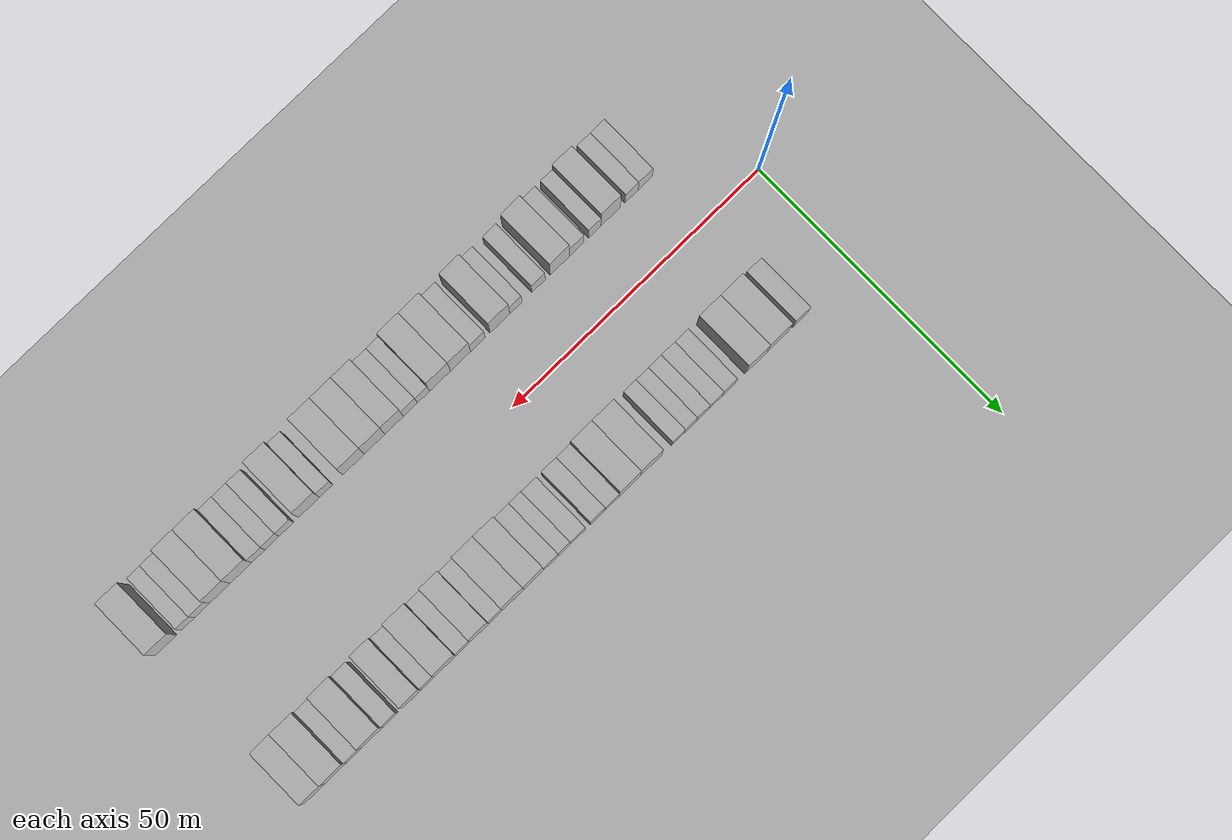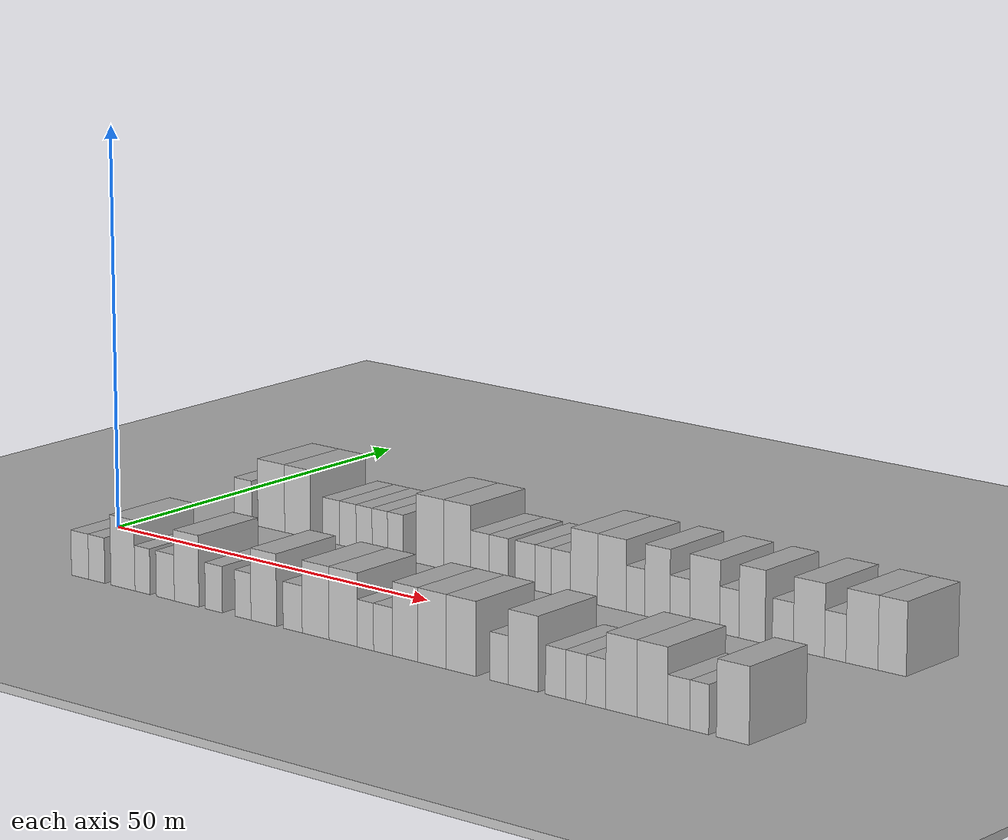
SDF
<sdf version="1.6">
 <world name="default">
  <include><name>ground_plane_1</name><uri>model://HANNAS_ground_plane</uri></include>
  <include>
   <name>ground_plane_2</name>
   <uri>model://HANNAS_ground_plane</uri>
   <pose>100 0 0  0 0 0</pose>
  </include>
  <model name="building_1">
   <static>1</static>
   <pose>11.4720 15.0000 0 0.000000 0.000000 1.570796</pose>
   <link name="link">
    <pose>0 0 3.00 0 0 0</pose>
    <collision name="collision"><geometry><box><size>10.0000 2.9440 6.0000</size></box></geometry></collision>
    <visual name="visual">
     <cast_shadows>0</cast_shadows>
     <geometry><box><size>10.0000 2.9440 6.0000</size></box></geometry>
     <material>
      <script>
       <uri>model://HANNAS_wall/materials/scripts</uri>
       <uri>model://HANNAS_wall/materials/textures</uri>
       <name>vrc/HANNAS_wall</name>
      </script>
     </material>
    </visual>
   </link>
  </model>
  <model name="building_2">
   <static>1</static>
   <pose>16.1658 15.0000 0 0.000000 0.000000 1.570796</pose>
   <link name="link">
    <pose>0 0 4.50 0 0 0</pose>
    <collision name="collision"><geometry><box><size>10.0000 4.4437 9.0000</size></box></geometry></collision>
    <visual name="visual">
     <cast_shadows>0</cast_shadows>
     <geometry><box><size>10.0000 4.4437 9.0000</size></box></geometry>
     <material>
      <script>
       <uri>model://HANNAS_wall/materials/scripts</uri>
       <uri>model://HANNAS_wall/materials/textures</uri>
       <name>vrc/HANNAS_wall</name>
      </script>
     </material>
    </visual>
   </link>
  </model>
  <model name="building_3">
   <static>1</static>
   <pose>20.5180 15.0000 0 0.000000 0.000000 1.570796</pose>
   <link name="link">
    <pose>0 0 4.50 0 0 0</pose>
    <collision name="collision"><geometry><box><size>10.0000 4.2608 9.0000</size></box></geometry></collision>
    <visual name="visual">
     <cast_shadows>0</cast_shadows>
     <geometry><box><size>10.0000 4.2608 9.0000</size></box></geometry>
     <material>
      <script>
       <uri>model://HANNAS_wall/materials/scripts</uri>
       <uri>model://HANNAS_wall/materials/textures</uri>
       <name>vrc/HANNAS_wall</name>
      </script>
     </material>
    </visual>
   </link>
  </model>
  <model name="building_4">
   <static>1</static>
   <pose>25.9887 15.0000 0 0.000000 0.000000 1.570796</pose>
   <link name="link">
    <pose>0 0 3.00 0 0 0</pose>
    <collision name="collision"><geometry><box><size>10.0000 2.6806 6.0000</size></box></geometry></collision>
    <visual name="visual">
     <cast_shadows>0</cast_shadows>
     <geometry><box><size>10.0000 2.6806 6.0000</size></box></geometry>
     <material>
      <script>
       <uri>model://HANNAS_wall/materials/scripts</uri>
       <uri>model://HANNAS_wall/materials/textures</uri>
       <name>vrc/HANNAS_wall</name>
      </script>
     </material>
    </visual>
   </link>
  </model>
  <model name="building_5">
   <static>1</static>
   <pose>28.6825 15.0000 0 0.000000 0.000000 1.570796</pose>
   <link name="link">
    <pose>0 0 3.00 0 0 0</pose>
    <collision name="collision"><geometry><box><size>10.0000 2.7070 6.0000</size></box></geometry></collision>
    <visual name="visual">
     <cast_shadows>0</cast_shadows>
     <geometry><box><size>10.0000 2.7070 6.0000</size></box></geometry>
     <material>
      <script>
       <uri>model://HANNAS_wall/materials/scripts</uri>
       <uri>model://HANNAS_wall/materials/textures</uri>
       <name>vrc/HANNAS_wall</name>
      </script>
     </material>
    </visual>
   </link>
  </model>
  <model name="building_6">
   <static>1</static>
   <pose>31.3200 15.0000 0 0.000000 0.000000 1.570796</pose>
   <link name="link">
    <pose>0 0 3.00 0 0 0</pose>
    <collision name="collision"><geometry><box><size>10.0000 2.5679 6.0000</size></box></geometry></collision>
    <visual name="visual">
     <cast_shadows>0</cast_shadows>
     <geometry><box><size>10.0000 2.5679 6.0000</size></box></geometry>
     <material>
      <script>
       <uri>model://HANNAS_wall/materials/scripts</uri>
       <uri>model://HANNAS_wall/materials/textures</uri>
       <name>vrc/HANNAS_wall</name>
      </script>
     </material>
    </visual>
   </link>
  </model>
  <model name="building_7">
   <static>1</static>
   <pose>33.8323 15.0000 0 0.000000 0.000000 1.570796</pose>
   <link name="link">
    <pose>0 0 3.00 0 0 0</pose>
    <collision name="collision"><geometry><box><size>10.0000 2.4568 6.0000</size></box></geometry></collision>
    <visual name="visual">
     <cast_shadows>0</cast_shadows>
     <geometry><box><size>10.0000 2.4568 6.0000</size></box></geometry>
     <material>
      <script>
       <uri>model://HANNAS_wall/materials/scripts</uri>
       <uri>model://HANNAS_wall/materials/textures</uri>
       <name>vrc/HANNAS_wall</name>
      </script>
     </material>
    </visual>
   </link>
  </model>
  <model name="building_8">
   <static>1</static>
   <pose>36.3138 15.0000 0 0.000000 0.000000 1.570796</pose>
   <link name="link">
    <pose>0 0 3.00 0 0 0</pose>
    <collision name="collision"><geometry><box><size>10.0000 2.5061 6.0000</size></box></geometry></collision>
    <visual name="visual">
     <cast_shadows>0</cast_shadows>
     <geometry><box><size>10.0000 2.5061 6.0000</size></box></geometry>
     <material>
      <script>
       <uri>model://HANNAS_wall/materials/scripts</uri>
       <uri>model://HANNAS_wall/materials/textures</uri>
       <name>vrc/HANNAS_wall</name>
      </script>
     </material>
    </visual>
   </link>
  </model>
  <model name="building_9">
   <static>1</static>
   <pose>41.7231 15.0000 0 0.000000 0.000000 1.570796</pose>
   <link name="link">
    <pose>0 0 4.50 0 0 0</pose>
    <collision name="collision"><geometry><box><size>10.0000 4.3126 9.0000</size></box></geometry></collision>
    <visual name="visual">
     <cast_shadows>0</cast_shadows>
     <geometry><box><size>10.0000 4.3126 9.0000</size></box></geometry>
     <material>
      <script>
       <uri>model://HANNAS_wall/materials/scripts</uri>
       <uri>model://HANNAS_wall/materials/textures</uri>
       <name>vrc/HANNAS_wall</name>
      </script>
     </material>
    </visual>
   </link>
  </model>
  <model name="building_10">
   <static>1</static>
   <pose>45.9907 15.0000 0 0.000000 0.000000 1.570796</pose>
   <link name="link">
    <pose>0 0 4.50 0 0 0</pose>
    <collision name="collision"><geometry><box><size>10.0000 4.2225 9.0000</size></box></geometry></collision>
    <visual name="visual">
     <cast_shadows>0</cast_shadows>
     <geometry><box><size>10.0000 4.2225 9.0000</size></box></geometry>
     <material>
      <script>
       <uri>model://HANNAS_wall/materials/scripts</uri>
       <uri>model://HANNAS_wall/materials/textures</uri>
       <name>vrc/HANNAS_wall</name>
      </script>
     </material>
    </visual>
   </link>
  </model>
  <model name="building_11">
   <static>1</static>
   <pose>49.5140 15.0000 0 0.000000 0.000000 1.570796</pose>
   <link name="link">
    <pose>0 0 3.00 0 0 0</pose>
    <collision name="collision"><geometry><box><size>10.0000 2.8241 6.0000</size></box></geometry></collision>
    <visual name="visual">
     <cast_shadows>0</cast_shadows>
     <geometry><box><size>10.0000 2.8241 6.0000</size></box></geometry>
     <material>
      <script>
       <uri>model://HANNAS_wall/materials/scripts</uri>
       <uri>model://HANNAS_wall/materials/textures</uri>
       <name>vrc/HANNAS_wall</name>
      </script>
     </material>
    </visual>
   </link>
  </model>
  <model name="building_12">
   <static>1</static>
   <pose>52.3961 15.0000 0 0.000000 0.000000 1.570796</pose>
   <link name="link">
    <pose>0 0 3.00 0 0 0</pose>
    <collision name="collision"><geometry><box><size>10.0000 2.9401 6.0000</size></box></geometry></collision>
    <visual name="visual">
     <cast_shadows>0</cast_shadows>
     <geometry><box><size>10.0000 2.9401 6.0000</size></box></geometry>
     <material>
      <script>
       <uri>model://HANNAS_wall/materials/scripts</uri>
       <uri>model://HANNAS_wall/materials/textures</uri>
       <name>vrc/HANNAS_wall</name>
      </script>
     </material>
    </visual>
   </link>
  </model>
  <model name="building_13">
   <static>1</static>
   <pose>56.3581 15.0000 0 0.000000 0.000000 1.570796</pose>
   <link name="link">
    <pose>0 0 3.00 0 0 0</pose>
    <collision name="collision"><geometry><box><size>10.0000 2.9839 6.0000</size></box></geometry></collision>
    <visual name="visual">
     <cast_shadows>0</cast_shadows>
     <geometry><box><size>10.0000 2.9839 6.0000</size></box></geometry>
     <material>
      <script>
       <uri>model://HANNAS_wall/materials/scripts</uri>
       <uri>model://HANNAS_wall/materials/textures</uri>
       <name>vrc/HANNAS_wall</name>
      </script>
     </material>
    </visual>
   </link>
  </model>
  <model name="building_14">
   <static>1</static>
   <pose>59.0586 15.0000 0 0.000000 0.000000 1.570796</pose>
   <link name="link">
    <pose>0 0 3.00 0 0 0</pose>
    <collision name="collision"><geometry><box><size>10.0000 2.4173 6.0000</size></box></geometry></collision>
    <visual name="visual">
     <cast_shadows>0</cast_shadows>
     <geometry><box><size>10.0000 2.4173 6.0000</size></box></geometry>
     <material>
      <script>
       <uri>model://HANNAS_wall/materials/scripts</uri>
       <uri>model://HANNAS_wall/materials/textures</uri>
       <name>vrc/HANNAS_wall</name>
      </script>
     </material>
    </visual>
   </link>
  </model>
  <model name="building_15">
   <static>1</static>
   <pose>61.7267 15.0000 0 0.000000 0.000000 1.570796</pose>
   <link name="link">
    <pose>0 0 3.00 0 0 0</pose>
    <collision name="collision"><geometry><box><size>10.0000 2.9189 6.0000</size></box></geometry></collision>
    <visual name="visual">
     <cast_shadows>0</cast_shadows>
     <geometry><box><size>10.0000 2.9189 6.0000</size></box></geometry>
     <material>
      <script>
       <uri>model://HANNAS_wall/materials/scripts</uri>
       <uri>model://HANNAS_wall/materials/textures</uri>
       <name>vrc/HANNAS_wall</name>
      </script>
     </material>
    </visual>
   </link>
  </model>
  <model name="building_16">
   <static>1</static>
   <pose>65.1740 15.0000 0 0.000000 0.000000 1.570796</pose>
   <link name="link">
    <pose>0 0 4.50 0 0 0</pose>
    <collision name="collision"><geometry><box><size>10.0000 3.9758 9.0000</size></box></geometry></collision>
    <visual name="visual">
     <cast_shadows>0</cast_shadows>
     <geometry><box><size>10.0000 3.9758 9.0000</size></box></geometry>
     <material>
      <script>
       <uri>model://HANNAS_wall/materials/scripts</uri>
       <uri>model://HANNAS_wall/materials/textures</uri>
       <name>vrc/HANNAS_wall</name>
      </script>
     </material>
    </visual>
   </link>
  </model>
  <model name="building_17">
   <static>1</static>
   <pose>69.2637 15.0000 0 0.000000 0.000000 1.570796</pose>
   <link name="link">
    <pose>0 0 4.50 0 0 0</pose>
    <collision name="collision"><geometry><box><size>10.0000 4.2034 9.0000</size></box></geometry></collision>
    <visual name="visual">
     <cast_shadows>0</cast_shadows>
     <geometry><box><size>10.0000 4.2034 9.0000</size></box></geometry>
     <material>
      <script>
       <uri>model://HANNAS_wall/materials/scripts</uri>
       <uri>model://HANNAS_wall/materials/textures</uri>
       <name>vrc/HANNAS_wall</name>
      </script>
     </material>
    </visual>
   </link>
  </model>
  <model name="building_18">
   <static>1</static>
   <pose>72.7155 15.0000 0 0.000000 0.000000 1.570796</pose>
   <link name="link">
    <pose>0 0 3.00 0 0 0</pose>
    <collision name="collision"><geometry><box><size>10.0000 2.7002 6.0000</size></box></geometry></collision>
    <visual name="visual">
     <cast_shadows>0</cast_shadows>
     <geometry><box><size>10.0000 2.7002 6.0000</size></box></geometry>
     <material>
      <script>
       <uri>model://HANNAS_wall/materials/scripts</uri>
       <uri>model://HANNAS_wall/materials/textures</uri>
       <name>vrc/HANNAS_wall</name>
      </script>
     </material>
    </visual>
   </link>
  </model>
  <model name="building_19">
   <static>1</static>
   <pose>75.8764 15.0000 0 0.000000 0.000000 1.570796</pose>
   <link name="link">
    <pose>0 0 4.50 0 0 0</pose>
    <collision name="collision"><geometry><box><size>10.0000 3.6217 9.0000</size></box></geometry></collision>
    <visual name="visual">
     <cast_shadows>0</cast_shadows>
     <geometry><box><size>10.0000 3.6217 9.0000</size></box></geometry>
     <material>
      <script>
       <uri>model://HANNAS_wall/materials/scripts</uri>
       <uri>model://HANNAS_wall/materials/textures</uri>
       <name>vrc/HANNAS_wall</name>
      </script>
     </material>
    </visual>
   </link>
  </model>
  <model name="building_20">
   <static>1</static>
   <pose>79.0913 15.0000 0 0.000000 0.000000 1.570796</pose>
   <link name="link">
    <pose>0 0 3.00 0 0 0</pose>
    <collision name="collision"><geometry><box><size>10.0000 2.8080 6.0000</size></box></geometry></collision>
    <visual name="visual">
     <cast_shadows>0</cast_shadows>
     <geometry><box><size>10.0000 2.8080 6.0000</size></box></geometry>
     <material>
      <script>
       <uri>model://HANNAS_wall/materials/scripts</uri>
       <uri>model://HANNAS_wall/materials/textures</uri>
       <name>vrc/HANNAS_wall</name>
      </script>
     </material>
    </visual>
   </link>
  </model>
  <model name="building_21">
   <static>1</static>
   <pose>82.6306 15.0000 0 0.000000 0.000000 1.570796</pose>
   <link name="link">
    <pose>0 0 4.50 0 0 0</pose>
    <collision name="collision"><geometry><box><size>10.0000 4.2707 9.0000</size></box></geometry></collision>
    <visual name="visual">
     <cast_shadows>0</cast_shadows>
     <geometry><box><size>10.0000 4.2707 9.0000</size></box></geometry>
     <material>
      <script>
       <uri>model://HANNAS_wall/materials/scripts</uri>
       <uri>model://HANNAS_wall/materials/textures</uri>
       <name>vrc/HANNAS_wall</name>
      </script>
     </material>
    </visual>
   </link>
  </model>
  <model name="building_22">
   <static>1</static>
   <pose>86.1015 15.0000 0 0.000000 0.000000 1.570796</pose>
   <link name="link">
    <pose>0 0 3.00 0 0 0</pose>
    <collision name="collision"><geometry><box><size>10.0000 2.6711 6.0000</size></box></geometry></collision>
    <visual name="visual">
     <cast_shadows>0</cast_shadows>
     <geometry><box><size>10.0000 2.6711 6.0000</size></box></geometry>
     <material>
      <script>
       <uri>model://HANNAS_wall/materials/scripts</uri>
       <uri>model://HANNAS_wall/materials/textures</uri>
       <name>vrc/HANNAS_wall</name>
      </script>
     </material>
    </visual>
   </link>
  </model>
  <model name="building_23">
   <static>1</static>
   <pose>89.2615 15.0000 0 0.000000 0.000000 1.570796</pose>
   <link name="link">
    <pose>0 0 4.50 0 0 0</pose>
    <collision name="collision"><geometry><box><size>10.0000 3.6487 9.0000</size></box></geometry></collision>
    <visual name="visual">
     <cast_shadows>0</cast_shadows>
     <geometry><box><size>10.0000 3.6487 9.0000</size></box></geometry>
     <material>
      <script>
       <uri>model://HANNAS_wall/materials/scripts</uri>
       <uri>model://HANNAS_wall/materials/textures</uri>
       <name>vrc/HANNAS_wall</name>
      </script>
     </material>
    </visual>
   </link>
  </model>
  <model name="building_24">
   <static>1</static>
   <pose>93.5392 15.0000 0 0.000000 0.000000 1.570796</pose>
   <link name="link">
    <pose>0 0 3.00 0 0 0</pose>
    <collision name="collision"><geometry><box><size>10.0000 2.9068 6.0000</size></box></geometry></collision>
    <visual name="visual">
     <cast_shadows>0</cast_shadows>
     <geometry><box><size>10.0000 2.9068 6.0000</size></box></geometry>
     <material>
      <script>
       <uri>model://HANNAS_wall/materials/scripts</uri>
       <uri>model://HANNAS_wall/materials/textures</uri>
       <name>vrc/HANNAS_wall</name>
      </script>
     </material>
    </visual>
   </link>
  </model>
  <model name="building_25">
   <static>1</static>
   <pose>97.1239 15.0000 0 0.000000 0.000000 1.570796</pose>
   <link name="link">
    <pose>0 0 4.50 0 0 0</pose>
    <collision name="collision"><geometry><box><size>10.0000 4.2625 9.0000</size></box></geometry></collision>
    <visual name="visual">
     <cast_shadows>0</cast_shadows>
     <geometry><box><size>10.0000 4.2625 9.0000</size></box></geometry>
     <material>
      <script>
       <uri>model://HANNAS_wall/materials/scripts</uri>
       <uri>model://HANNAS_wall/materials/textures</uri>
       <name>vrc/HANNAS_wall</name>
      </script>
     </material>
    </visual>
   </link>
  </model>
  <model name="building_26">
   <static>1</static>
   <pose>100.7043 15.0000 0 0.000000 0.000000 1.570796</pose>
   <link name="link">
    <pose>0 0 3.00 0 0 0</pose>
    <collision name="collision"><geometry><box><size>10.0000 2.8983 6.0000</size></box></geometry></collision>
    <visual name="visual">
     <cast_shadows>0</cast_shadows>
     <geometry><box><size>10.0000 2.8983 6.0000</size></box></geometry>
     <material>
      <script>
       <uri>model://HANNAS_wall/materials/scripts</uri>
       <uri>model://HANNAS_wall/materials/textures</uri>
       <name>vrc/HANNAS_wall</name>
      </script>
     </material>
    </visual>
   </link>
  </model>
  <model name="building_27">
   <static>1</static>
   <pose>104.2949 15.0000 0 0.000000 0.000000 1.570796</pose>
   <link name="link">
    <pose>0 0 4.50 0 0 0</pose>
    <collision name="collision"><geometry><box><size>10.0000 4.2830 9.0000</size></box></geometry></collision>
    <visual name="visual">
     <cast_shadows>0</cast_shadows>
     <geometry><box><size>10.0000 4.2830 9.0000</size></box></geometry>
     <material>
      <script>
       <uri>model://HANNAS_wall/materials/scripts</uri>
       <uri>model://HANNAS_wall/materials/textures</uri>
       <name>vrc/HANNAS_wall</name>
      </script>
     </material>
    </visual>
   </link>
  </model>
  <model name="building_28">
   <static>1</static>
   <pose>108.3185 15.0000 0 0.000000 0.000000 1.570796</pose>
   <link name="link">
    <pose>0 0 4.50 0 0 0</pose>
    <collision name="collision"><geometry><box><size>10.0000 3.7640 9.0000</size></box></geometry></collision>
    <visual name="visual">
     <cast_shadows>0</cast_shadows>
     <geometry><box><size>10.0000 3.7640 9.0000</size></box></geometry>
     <material>
      <script>
       <uri>model://HANNAS_wall/materials/scripts</uri>
       <uri>model://HANNAS_wall/materials/textures</uri>
       <name>vrc/HANNAS_wall</name>
      </script>
     </material>
    </visual>
   </link>
  </model>
  <model name="building_58">
   <static>1</static>
   <pose>13.4286 -15.0000 0 0.000000 0.000000 1.570796</pose>
   <link name="link">
    <pose>0 0 3.00 0 0 0</pose>
    <collision name="collision"><geometry><box><size>10.0000 2.8573 6.0000</size></box></geometry></collision>
    <visual name="visual">
     <cast_shadows>0</cast_shadows>
     <geometry><box><size>10.0000 2.8573 6.0000</size></box></geometry>
     <material>
      <script>
       <uri>model://HANNAS_wall/materials/scripts</uri>
       <uri>model://HANNAS_wall/materials/textures</uri>
       <name>vrc/HANNAS_wall</name>
      </script>
     </material>
    </visual>
   </link>
  </model>
  <model name="building_59">
   <static>1</static>
   <pose>16.1869 -15.0000 0 0.000000 0.000000 1.570796</pose>
   <link name="link">
    <pose>0 0 3.00 0 0 0</pose>
    <collision name="collision"><geometry><box><size>10.0000 2.6592 6.0000</size></box></geometry></collision>
    <visual name="visual">
     <cast_shadows>0</cast_shadows>
     <geometry><box><size>10.0000 2.6592 6.0000</size></box></geometry>
     <material>
      <script>
       <uri>model://HANNAS_wall/materials/scripts</uri>
       <uri>model://HANNAS_wall/materials/textures</uri>
       <name>vrc/HANNAS_wall</name>
      </script>
     </material>
    </visual>
   </link>
  </model>
  <model name="building_60">
   <static>1</static>
   <pose>20.4738 -15.0000 0 0.000000 0.000000 1.570796</pose>
   <link name="link">
    <pose>0 0 4.50 0 0 0</pose>
    <collision name="collision"><geometry><box><size>10.0000 3.9146 9.0000</size></box></geometry></collision>
    <visual name="visual">
     <cast_shadows>0</cast_shadows>
     <geometry><box><size>10.0000 3.9146 9.0000</size></box></geometry>
     <material>
      <script>
       <uri>model://HANNAS_wall/materials/scripts</uri>
       <uri>model://HANNAS_wall/materials/textures</uri>
       <name>vrc/HANNAS_wall</name>
      </script>
     </material>
    </visual>
   </link>
  </model>
  <model name="building_61">
   <static>1</static>
   <pose>23.6617 -15.0000 0 0.000000 0.000000 1.570796</pose>
   <link name="link">
    <pose>0 0 3.00 0 0 0</pose>
    <collision name="collision"><geometry><box><size>10.0000 2.4613 6.0000</size></box></geometry></collision>
    <visual name="visual">
     <cast_shadows>0</cast_shadows>
     <geometry><box><size>10.0000 2.4613 6.0000</size></box></geometry>
     <material>
      <script>
       <uri>model://HANNAS_wall/materials/scripts</uri>
       <uri>model://HANNAS_wall/materials/textures</uri>
       <name>vrc/HANNAS_wall</name>
      </script>
     </material>
    </visual>
   </link>
  </model>
  <model name="building_62">
   <static>1</static>
   <pose>27.3281 -15.0000 0 0.000000 0.000000 1.570796</pose>
   <link name="link">
    <pose>0 0 3.00 0 0 0</pose>
    <collision name="collision"><geometry><box><size>10.0000 2.8715 6.0000</size></box></geometry></collision>
    <visual name="visual">
     <cast_shadows>0</cast_shadows>
     <geometry><box><size>10.0000 2.8715 6.0000</size></box></geometry>
     <material>
      <script>
       <uri>model://HANNAS_wall/materials/scripts</uri>
       <uri>model://HANNAS_wall/materials/textures</uri>
       <name>vrc/HANNAS_wall</name>
      </script>
     </material>
    </visual>
   </link>
  </model>
  <model name="building_63">
   <static>1</static>
   <pose>30.7257 -15.0000 0 0.000000 0.000000 1.570796</pose>
   <link name="link">
    <pose>0 0 4.50 0 0 0</pose>
    <collision name="collision"><geometry><box><size>10.0000 3.9237 9.0000</size></box></geometry></collision>
    <visual name="visual">
     <cast_shadows>0</cast_shadows>
     <geometry><box><size>10.0000 3.9237 9.0000</size></box></geometry>
     <material>
      <script>
       <uri>model://HANNAS_wall/materials/scripts</uri>
       <uri>model://HANNAS_wall/materials/textures</uri>
       <name>vrc/HANNAS_wall</name>
      </script>
     </material>
    </visual>
   </link>
  </model>
  <model name="building_64">
   <static>1</static>
   <pose>35.0339 -15.0000 0 0.000000 0.000000 1.570796</pose>
   <link name="link">
    <pose>0 0 3.00 0 0 0</pose>
    <collision name="collision"><geometry><box><size>10.0000 2.6927 6.0000</size></box></geometry></collision>
    <visual name="visual">
     <cast_shadows>0</cast_shadows>
     <geometry><box><size>10.0000 2.6927 6.0000</size></box></geometry>
     <material>
      <script>
       <uri>model://HANNAS_wall/materials/scripts</uri>
       <uri>model://HANNAS_wall/materials/textures</uri>
       <name>vrc/HANNAS_wall</name>
      </script>
     </material>
    </visual>
   </link>
  </model>
  <model name="building_65">
   <static>1</static>
   <pose>39.6111 -15.0000 0 0.000000 0.000000 1.570796</pose>
   <link name="link">
    <pose>0 0 3.00 0 0 0</pose>
    <collision name="collision"><geometry><box><size>10.0000 2.4617 6.0000</size></box></geometry></collision>
    <visual name="visual">
     <cast_shadows>0</cast_shadows>
     <geometry><box><size>10.0000 2.4617 6.0000</size></box></geometry>
     <material>
      <script>
       <uri>model://HANNAS_wall/materials/scripts</uri>
       <uri>model://HANNAS_wall/materials/textures</uri>
       <name>vrc/HANNAS_wall</name>
      </script>
     </material>
    </visual>
   </link>
  </model>
  <model name="building_66">
   <static>1</static>
   <pose>42.8222 -15.0000 0 0.000000 0.000000 1.570796</pose>
   <link name="link">
    <pose>0 0 4.50 0 0 0</pose>
    <collision name="collision"><geometry><box><size>10.0000 3.9605 9.0000</size></box></geometry></collision>
    <visual name="visual">
     <cast_shadows>0</cast_shadows>
     <geometry><box><size>10.0000 3.9605 9.0000</size></box></geometry>
     <material>
      <script>
       <uri>model://HANNAS_wall/materials/scripts</uri>
       <uri>model://HANNAS_wall/materials/textures</uri>
       <name>vrc/HANNAS_wall</name>
      </script>
     </material>
    </visual>
   </link>
  </model>
  <model name="building_67">
   <static>1</static>
   <pose>47.2579 -15.0000 0 0.000000 0.000000 1.570796</pose>
   <link name="link">
    <pose>0 0 3.00 0 0 0</pose>
    <collision name="collision"><geometry><box><size>10.0000 2.9109 6.0000</size></box></geometry></collision>
    <visual name="visual">
     <cast_shadows>0</cast_shadows>
     <geometry><box><size>10.0000 2.9109 6.0000</size></box></geometry>
     <material>
      <script>
       <uri>model://HANNAS_wall/materials/scripts</uri>
       <uri>model://HANNAS_wall/materials/textures</uri>
       <name>vrc/HANNAS_wall</name>
      </script>
     </material>
    </visual>
   </link>
  </model>
  <model name="building_68">
   <static>1</static>
   <pose>50.7427 -15.0000 0 0.000000 0.000000 1.570796</pose>
   <link name="link">
    <pose>0 0 4.50 0 0 0</pose>
    <collision name="collision"><geometry><box><size>10.0000 4.0586 9.0000</size></box></geometry></collision>
    <visual name="visual">
     <cast_shadows>0</cast_shadows>
     <geometry><box><size>10.0000 4.0586 9.0000</size></box></geometry>
     <material>
      <script>
       <uri>model://HANNAS_wall/materials/scripts</uri>
       <uri>model://HANNAS_wall/materials/textures</uri>
       <name>vrc/HANNAS_wall</name>
      </script>
     </material>
    </visual>
   </link>
  </model>
  <model name="building_69">
   <static>1</static>
   <pose>54.8832 -15.0000 0 0.000000 0.000000 1.570796</pose>
   <link name="link">
    <pose>0 0 4.50 0 0 0</pose>
    <collision name="collision"><geometry><box><size>10.0000 4.2225 9.0000</size></box></geometry></collision>
    <visual name="visual">
     <cast_shadows>0</cast_shadows>
     <geometry><box><size>10.0000 4.2225 9.0000</size></box></geometry>
     <material>
      <script>
       <uri>model://HANNAS_wall/materials/scripts</uri>
       <uri>model://HANNAS_wall/materials/textures</uri>
       <name>vrc/HANNAS_wall</name>
      </script>
     </material>
    </visual>
   </link>
  </model>
  <model name="building_70">
   <static>1</static>
   <pose>58.2079 -15.0000 0 0.000000 0.000000 1.570796</pose>
   <link name="link">
    <pose>0 0 3.00 0 0 0</pose>
    <collision name="collision"><geometry><box><size>10.0000 2.4268 6.0000</size></box></geometry></collision>
    <visual name="visual">
     <cast_shadows>0</cast_shadows>
     <geometry><box><size>10.0000 2.4268 6.0000</size></box></geometry>
     <material>
      <script>
       <uri>model://HANNAS_wall/materials/scripts</uri>
       <uri>model://HANNAS_wall/materials/textures</uri>
       <name>vrc/HANNAS_wall</name>
      </script>
     </material>
    </visual>
   </link>
  </model>
  <model name="building_71">
   <static>1</static>
   <pose>60.8193 -15.0000 0 0.000000 0.000000 1.570796</pose>
   <link name="link">
    <pose>0 0 3.00 0 0 0</pose>
    <collision name="collision"><geometry><box><size>10.0000 2.7959 6.0000</size></box></geometry></collision>
    <visual name="visual">
     <cast_shadows>0</cast_shadows>
     <geometry><box><size>10.0000 2.7959 6.0000</size></box></geometry>
     <material>
      <script>
       <uri>model://HANNAS_wall/materials/scripts</uri>
       <uri>model://HANNAS_wall/materials/textures</uri>
       <name>vrc/HANNAS_wall</name>
      </script>
     </material>
    </visual>
   </link>
  </model>
  <model name="building_72">
   <static>1</static>
   <pose>64.0634 -15.0000 0 0.000000 0.000000 1.570796</pose>
   <link name="link">
    <pose>0 0 4.50 0 0 0</pose>
    <collision name="collision"><geometry><box><size>10.0000 3.6923 9.0000</size></box></geometry></collision>
    <visual name="visual">
     <cast_shadows>0</cast_shadows>
     <geometry><box><size>10.0000 3.6923 9.0000</size></box></geometry>
     <material>
      <script>
       <uri>model://HANNAS_wall/materials/scripts</uri>
       <uri>model://HANNAS_wall/materials/textures</uri>
       <name>vrc/HANNAS_wall</name>
      </script>
     </material>
    </visual>
   </link>
  </model>
  <model name="building_73">
   <static>1</static>
   <pose>67.9667 -15.0000 0 0.000000 0.000000 1.570796</pose>
   <link name="link">
    <pose>0 0 4.50 0 0 0</pose>
    <collision name="collision"><geometry><box><size>10.0000 4.1142 9.0000</size></box></geometry></collision>
    <visual name="visual">
     <cast_shadows>0</cast_shadows>
     <geometry><box><size>10.0000 4.1142 9.0000</size></box></geometry>
     <material>
      <script>
       <uri>model://HANNAS_wall/materials/scripts</uri>
       <uri>model://HANNAS_wall/materials/textures</uri>
       <name>vrc/HANNAS_wall</name>
      </script>
     </material>
    </visual>
   </link>
  </model>
  <model name="building_74">
   <static>1</static>
   <pose>72.1611 -15.0000 0 0.000000 0.000000 1.570796</pose>
   <link name="link">
    <pose>0 0 4.50 0 0 0</pose>
    <collision name="collision"><geometry><box><size>10.0000 4.2747 9.0000</size></box></geometry></collision>
    <visual name="visual">
     <cast_shadows>0</cast_shadows>
     <geometry><box><size>10.0000 4.2747 9.0000</size></box></geometry>
     <material>
      <script>
       <uri>model://HANNAS_wall/materials/scripts</uri>
       <uri>model://HANNAS_wall/materials/textures</uri>
       <name>vrc/HANNAS_wall</name>
      </script>
     </material>
    </visual>
   </link>
  </model>
  <model name="building_75">
   <static>1</static>
   <pose>77.5964 -15.0000 0 0.000000 0.000000 1.570796</pose>
   <link name="link">
    <pose>0 0 3.00 0 0 0</pose>
    <collision name="collision"><geometry><box><size>10.0000 2.5960 6.0000</size></box></geometry></collision>
    <visual name="visual">
     <cast_shadows>0</cast_shadows>
     <geometry><box><size>10.0000 2.5960 6.0000</size></box></geometry>
     <material>
      <script>
       <uri>model://HANNAS_wall/materials/scripts</uri>
       <uri>model://HANNAS_wall/materials/textures</uri>
       <name>vrc/HANNAS_wall</name>
      </script>
     </material>
    </visual>
   </link>
  </model>
  <model name="building_76">
   <static>1</static>
   <pose>80.9756 -15.0000 0 0.000000 0.000000 1.570796</pose>
   <link name="link">
    <pose>0 0 4.50 0 0 0</pose>
    <collision name="collision"><geometry><box><size>10.0000 4.1623 9.0000</size></box></geometry></collision>
    <visual name="visual">
     <cast_shadows>0</cast_shadows>
     <geometry><box><size>10.0000 4.1623 9.0000</size></box></geometry>
     <material>
      <script>
       <uri>model://HANNAS_wall/materials/scripts</uri>
       <uri>model://HANNAS_wall/materials/textures</uri>
       <name>vrc/HANNAS_wall</name>
      </script>
     </material>
    </visual>
   </link>
  </model>
  <model name="building_77">
   <static>1</static>
   <pose>85.4653 -15.0000 0 0.000000 0.000000 1.570796</pose>
   <link name="link">
    <pose>0 0 3.00 0 0 0</pose>
    <collision name="collision"><geometry><box><size>10.0000 2.8170 6.0000</size></box></geometry></collision>
    <visual name="visual">
     <cast_shadows>0</cast_shadows>
     <geometry><box><size>10.0000 2.8170 6.0000</size></box></geometry>
     <material>
      <script>
       <uri>model://HANNAS_wall/materials/scripts</uri>
       <uri>model://HANNAS_wall/materials/textures</uri>
       <name>vrc/HANNAS_wall</name>
      </script>
     </material>
    </visual>
   </link>
  </model>
  <model name="building_78">
   <static>1</static>
   <pose>88.2706 -15.0000 0 0.000000 0.000000 1.570796</pose>
   <link name="link">
    <pose>0 0 3.00 0 0 0</pose>
    <collision name="collision"><geometry><box><size>10.0000 2.7937 6.0000</size></box></geometry></collision>
    <visual name="visual">
     <cast_shadows>0</cast_shadows>
     <geometry><box><size>10.0000 2.7937 6.0000</size></box></geometry>
     <material>
      <script>
       <uri>model://HANNAS_wall/materials/scripts</uri>
       <uri>model://HANNAS_wall/materials/textures</uri>
       <name>vrc/HANNAS_wall</name>
      </script>
     </material>
    </visual>
   </link>
  </model>
  <model name="building_79">
   <static>1</static>
   <pose>91.0071 -15.0000 0 0.000000 0.000000 1.570796</pose>
   <link name="link">
    <pose>0 0 3.00 0 0 0</pose>
    <collision name="collision"><geometry><box><size>10.0000 2.6793 6.0000</size></box></geometry></collision>
    <visual name="visual">
     <cast_shadows>0</cast_shadows>
     <geometry><box><size>10.0000 2.6793 6.0000</size></box></geometry>
     <material>
      <script>
       <uri>model://HANNAS_wall/materials/scripts</uri>
       <uri>model://HANNAS_wall/materials/textures</uri>
       <name>vrc/HANNAS_wall</name>
      </script>
     </material>
    </visual>
   </link>
  </model>
  <model name="building_80">
   <static>1</static>
   <pose>94.4541 -15.0000 0 0.000000 0.000000 1.570796</pose>
   <link name="link">
    <pose>0 0 4.50 0 0 0</pose>
    <collision name="collision"><geometry><box><size>10.0000 4.2146 9.0000</size></box></geometry></collision>
    <visual name="visual">
     <cast_shadows>0</cast_shadows>
     <geometry><box><size>10.0000 4.2146 9.0000</size></box></geometry>
     <material>
      <script>
       <uri>model://HANNAS_wall/materials/scripts</uri>
       <uri>model://HANNAS_wall/materials/textures</uri>
       <name>vrc/HANNAS_wall</name>
      </script>
     </material>
    </visual>
   </link>
  </model>
  <model name="building_81">
   <static>1</static>
   <pose>98.6011 -15.0000 0 0.000000 0.000000 1.570796</pose>
   <link name="link">
    <pose>0 0 4.50 0 0 0</pose>
    <collision name="collision"><geometry><box><size>10.0000 4.0794 9.0000</size></box></geometry></collision>
    <visual name="visual">
     <cast_shadows>0</cast_shadows>
     <geometry><box><size>10.0000 4.0794 9.0000</size></box></geometry>
     <material>
      <script>
       <uri>model://HANNAS_wall/materials/scripts</uri>
       <uri>model://HANNAS_wall/materials/textures</uri>
       <name>vrc/HANNAS_wall</name>
      </script>
     </material>
    </visual>
   </link>
  </model>
  <model name="building_82">
   <static>1</static>
   <pose>102.1174 -15.0000 0 0.000000 0.000000 1.570796</pose>
   <link name="link">
    <pose>0 0 3.00 0 0 0</pose>
    <collision name="collision"><geometry><box><size>10.0000 2.9532 6.0000</size></box></geometry></collision>
    <visual name="visual">
     <cast_shadows>0</cast_shadows>
     <geometry><box><size>10.0000 2.9532 6.0000</size></box></geometry>
     <material>
      <script>
       <uri>model://HANNAS_wall/materials/scripts</uri>
       <uri>model://HANNAS_wall/materials/textures</uri>
       <name>vrc/HANNAS_wall</name>
      </script>
     </material>
    </visual>
   </link>
  </model>
  <model name="building_83">
   <static>1</static>
   <pose>104.8443 -15.0000 0 0.000000 0.000000 1.570796</pose>
   <link name="link">
    <pose>0 0 3.00 0 0 0</pose>
    <collision name="collision"><geometry><box><size>10.0000 2.5005 6.0000</size></box></geometry></collision>
    <visual name="visual">
     <cast_shadows>0</cast_shadows>
     <geometry><box><size>10.0000 2.5005 6.0000</size></box></geometry>
     <material>
      <script>
       <uri>model://HANNAS_wall/materials/scripts</uri>
       <uri>model://HANNAS_wall/materials/textures</uri>
       <name>vrc/HANNAS_wall</name>
      </script>
     </material>
    </visual>
   </link>
  </model>
  <model name="building_84">
   <static>1</static>
   <pose>109.2222 -15.0000 0 0.000000 0.000000 1.570796</pose>
   <link name="link">
    <pose>0 0 4.50 0 0 0</pose>
    <collision name="collision"><geometry><box><size>10.0000 4.2554 9.0000</size></box></geometry></collision>
    <visual name="visual">
     <cast_shadows>0</cast_shadows>
     <geometry><box><size>10.0000 4.2554 9.0000</size></box></geometry>
     <material>
      <script>
       <uri>model://HANNAS_wall/materials/scripts</uri>
       <uri>model://HANNAS_wall/materials/textures</uri>
       <name>vrc/HANNAS_wall</name>
      </script>
     </material>
    </visual>
   </link>
  </model>
 </world>
</sdf>
